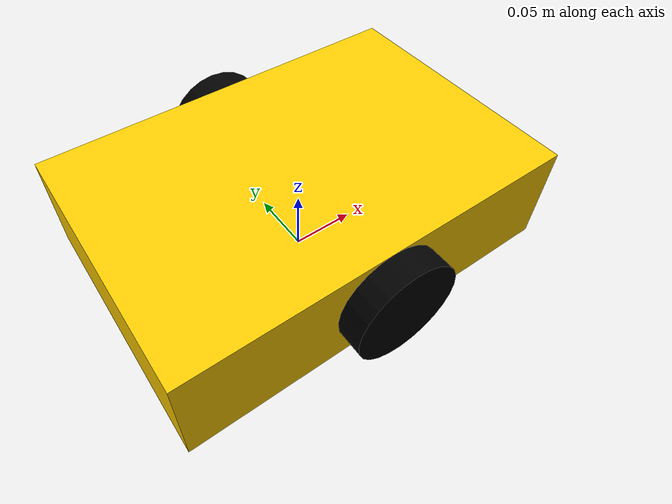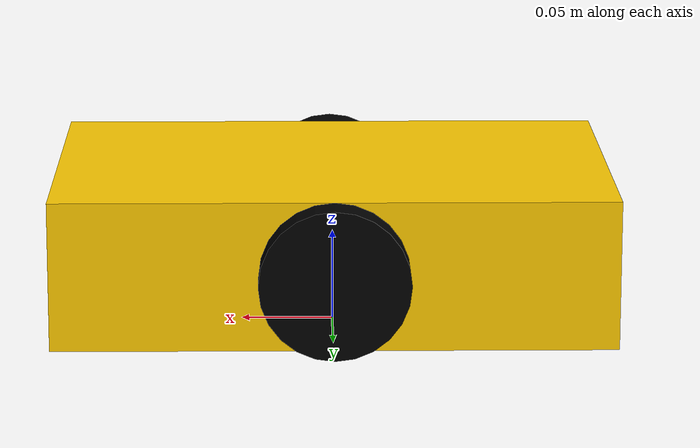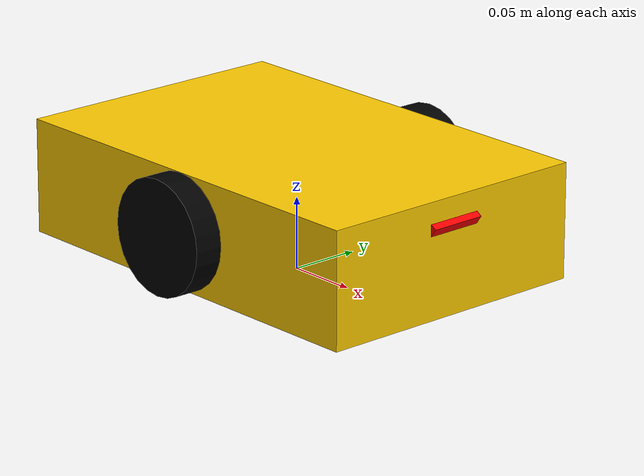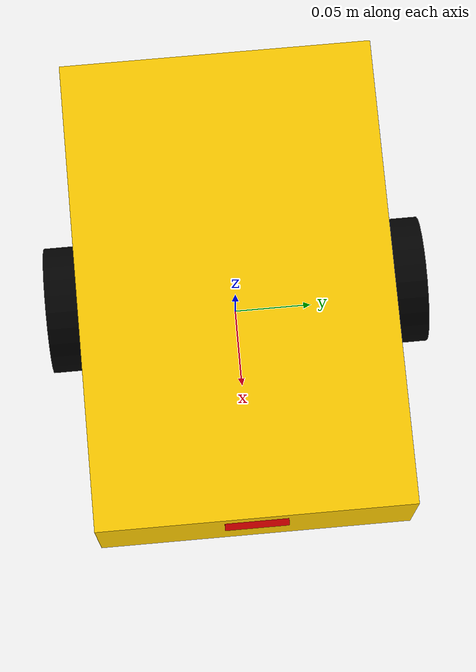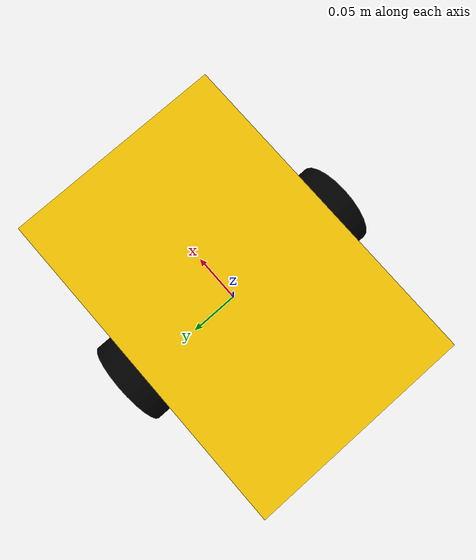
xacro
<?xml version="1.0"?>
<robot xmlns:xacro="http://www.ros.org/wiki/xacro" name="line_bot">

  <link name="base_footprint"/>

  <joint name="base_joint" type="fixed">
    <parent link="base_footprint"/>
    <child link="base_link"/>
    <origin xyz="0 0 0.05" rpy="0 0 0"/>
  </joint>

  <!-- BASE LINK -->
  <link name="base_link">
    <visual>
      <geometry><box size="0.3 0.2 0.08"/></geometry>
      <material name="yellow"><color rgba="1 0.8 0 1"/></material>
    </visual>
    <collision>
      <geometry><box size="0.3 0.2 0.08"/></geometry>
    </collision>
    <inertial>
      <mass value="1.0"/>
      <origin xyz="0 0 0" rpy="0 0 0"/>
      <inertia ixx="0.005" ixy="0" ixz="0" iyy="0.005" iyz="0" izz="0.01"/>
    </inertial>
  </link>

  <!-- LEFT WHEEL -->
  <link name="left_wheel">
    <visual>
      <geometry><cylinder radius="0.04" length="0.02"/></geometry>
      <material name="black"><color rgba="0 0 0 1"/></material>
    </visual>
    <collision>
      <geometry><cylinder radius="0.04" length="0.02"/></geometry>
    </collision>
    <inertial>
      <mass value="0.1"/>
      <inertia ixx="0.0001" ixy="0" ixz="0" iyy="0.0001" iyz="0" izz="0.0001"/>
    </inertial>
  </link>
  <joint name="left_wheel_joint" type="continuous">
    <parent link="base_link"/>
    <child link="left_wheel"/>
    <origin xyz="0 0.11 0" rpy="-1.5708 0 0"/>
    <axis xyz="0 0 1"/>
  </joint>

  <!-- RIGHT WHEEL -->
  <link name="right_wheel">
    <visual>
      <geometry><cylinder radius="0.04" length="0.02"/></geometry>
      <material name="black"><color rgba="0 0 0 1"/></material>
    </visual>
    <collision>
      <geometry><cylinder radius="0.04" length="0.02"/></geometry>
    </collision>
    <inertial>
      <mass value="0.1"/>
      <inertia ixx="0.0001" ixy="0" ixz="0" iyy="0.0001" iyz="0" izz="0.0001"/>
    </inertial>
  </link>
  <joint name="right_wheel_joint" type="continuous">
    <parent link="base_link"/>
    <child link="right_wheel"/>
    <origin xyz="0 -0.11 0" rpy="-1.5708 0 0"/>
    <axis xyz="0 0 1"/>
  </joint>

  <!-- FRONT CASTER WHEEL -->
  <link name="caster">
    <visual>
      <geometry><sphere radius="0.02"/></geometry>
      <material name="grey"><color rgba="0.5 0.5 0.5 1"/></material>
    </visual>
    <collision>
      <geometry><sphere radius="0.02"/></geometry>
    </collision>
    <inertial>
      <mass value="0.01"/>
      <inertia ixx="0.000001" ixy="0" ixz="0" iyy="0.000001" iyz="0" izz="0.000001"/>
    </inertial>
  </link>
  <joint name="caster_joint" type="fixed">
    <parent link="base_link"/>
    <child link="caster"/>
    <origin xyz="0.12 0 -0.02" rpy="0 0 0"/>
  </joint>

  <!-- CAMERA FOR LINE TRACKING -->
  <link name="camera_link">
    <visual>
      <geometry><box size="0.02 0.04 0.02"/></geometry>
      <material name="red"><color rgba="1 0 0 1"/></material>
    </visual>
  </link>
  <joint name="camera_joint" type="fixed">
    <parent link="base_link"/>
    <child link="camera_link"/>
    <origin xyz="0.14 0 0.02" rpy="0 0.6 0"/>
  </joint>

  <!-- GAZEBO FRICTION CONTROL -->
  <gazebo reference="left_wheel">
    <mu1>1.0</mu1>
    <mu2>1.0</mu2>
  </gazebo>
  <gazebo reference="right_wheel">
    <mu1>1.0</mu1>
    <mu2>1.0</mu2>
  </gazebo>
  <gazebo reference="caster">
    <mu1>0.001</mu1>
    <mu2>0.001</mu2>
  </gazebo>

  <!-- GAZEBO CAMERA SENSOR -->
  <gazebo reference="camera_link">
    <sensor name="camera" type="camera">
      <always_on>true</always_on>
      <update_rate>30</update_rate>
      <visualize>true</visualize>
      <topic>/camera/image_raw</topic>
      <gz_frame_id>camera_link</gz_frame_id>
      <camera>
        <horizontal_fov>1.2</horizontal_fov>
        <image>
          <width>320</width>
          <height>240</height>
          <format>R8G8B8</format>
        </image>
        <clip>
          <near>0.01</near>
          <far>5.0</far>
        </clip>
      </camera>
    </sensor>
  </gazebo>

  <!-- DIFF DRIVE PLUGIN -->
  <gazebo>
    <plugin filename="gz-sim-diff-drive-system" name="gz::sim::systems::DiffDrive">
      <left_joint>left_wheel_joint</left_joint>
      <right_joint>right_wheel_joint</right_joint>
      <wheel_separation>0.22</wheel_separation>
      <wheel_radius>0.04</wheel_radius>
      <topic>/cmd_vel</topic>
      <odom_topic>/odom</odom_topic>
      <tf_topic>/tf</tf_topic>
      <frame_id>odom</frame_id>
      <child_frame_id>base_footprint</child_frame_id>
    </plugin>
  </gazebo>

</robot>
